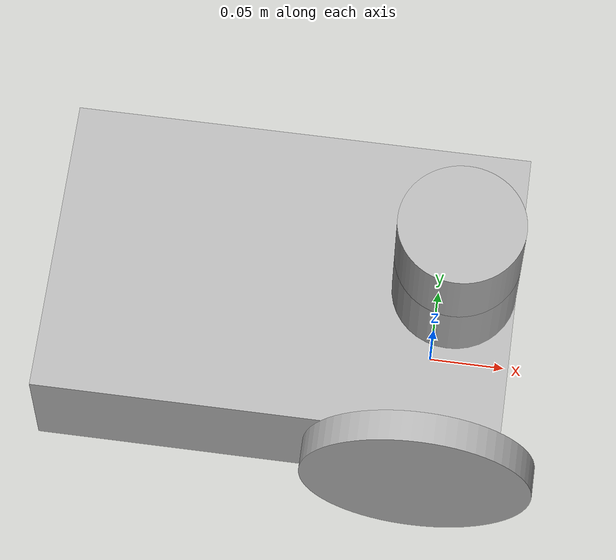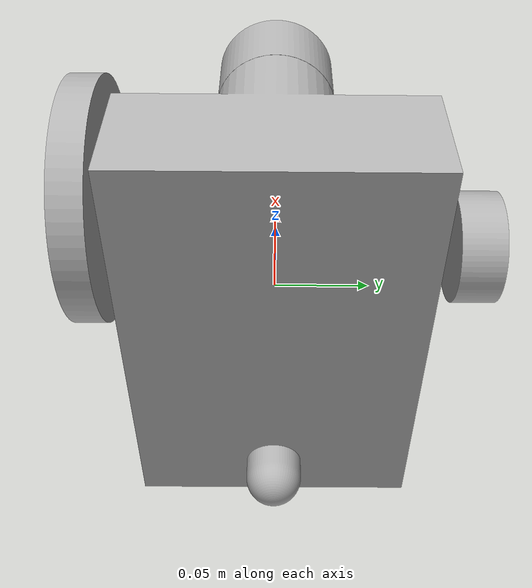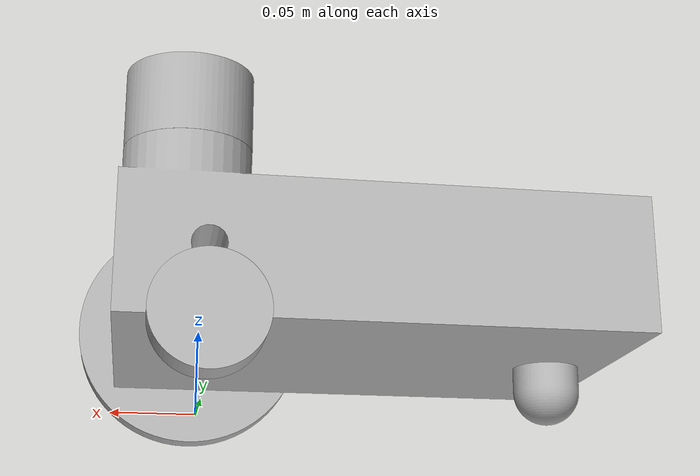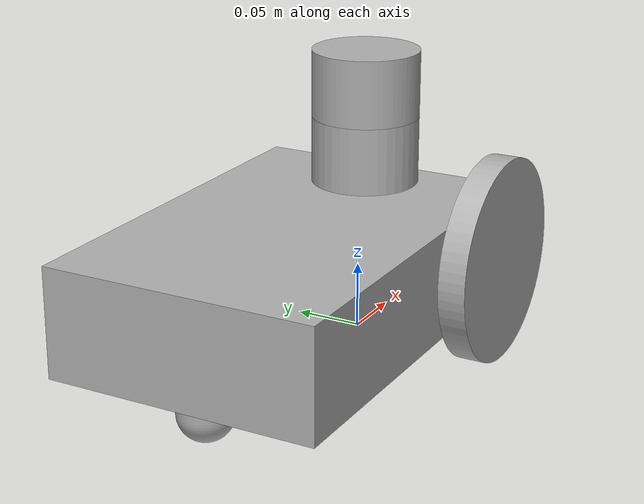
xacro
<?xml version="1.0" ?>
<robot name="simple_robot" xmlns:xacro="http://www.ros.org/wiki/xacro">

<xacro:include filename="$(find simple_robot_description)/urdf/materials.xacro" />
<xacro:include filename="$(find simple_robot_description)/urdf/simple_robot.trans" />
<xacro:include filename="$(find simple_robot_description)/urdf/simple_robot.gazebo" />
<link name="base_link">
  <inertial>
    <origin rpy="0 0 0" xyz="-0.09571758062309055 1.4585474774538683e-17 0.07827479128822486"/>
    <mass value="5.28780529276831"/>
    <inertia ixx="0.020681" ixy="-0.0" ixz="-0.001831" iyy="0.044562" iyz="0.0" izz="0.05757"/>
  </inertial>
  <visual>
    <origin rpy="0 0 0" xyz="0 0 0"/>
    <geometry>
      <mesh filename="package://simple_robot_description/meshes/base_link.stl" scale="0.001 0.001 0.001"/>
    </geometry>
    <material name="silver"/>
  </visual>
  <collision>
    <origin rpy="0 0 0" xyz="0 0 0"/>
    <geometry>
      <mesh filename="package://simple_robot_description/meshes/base_link.stl" scale="0.001 0.001 0.001"/>
    </geometry>
  </collision>
</link>

<link name="wheeel_left_1">
  <inertial>
    <origin rpy="0 0 0" xyz="1.2866718000271176e-17 0.010000000000000009 0.0"/>
    <mass value="0.3286891313818321"/>
    <inertia ixx="0.000473" ixy="-0.0" ixz="-0.0" iyy="0.000924" iyz="0.0" izz="0.000473"/>
  </inertial>
  <visual>
    <origin rpy="0 0 0" xyz="-0.0 -0.1 -0.075"/>
    <geometry>
      <mesh filename="package://simple_robot_description/meshes/wheeel_left_1.stl" scale="0.001 0.001 0.001"/>
    </geometry>
    <material name="silver"/>
  </visual>
  <collision>
    <origin rpy="0 0 0" xyz="-0.0 -0.1 -0.075"/>
    <geometry>
      <mesh filename="package://simple_robot_description/meshes/wheeel_left_1.stl" scale="0.001 0.001 0.001"/>
    </geometry>
  </collision>
</link>

<link name="wheel_right_1">
  <inertial>
    <origin rpy="0 0 0" xyz="1.2866718000271176e-17 -0.010000000000000009 0.0"/>
    <mass value="0.3286891313818321"/>
    <inertia ixx="0.000473" ixy="0.0" ixz="0.0" iyy="0.000924" iyz="0.0" izz="0.000473"/>
  </inertial>
  <visual>
    <origin rpy="0 0 0" xyz="-0.0 0.1 -0.075"/>
    <geometry>
      <mesh filename="package://simple_robot_description/meshes/wheel_right_1.stl" scale="0.001 0.001 0.001"/>
    </geometry>
    <material name="silver"/>
  </visual>
  <collision>
    <origin rpy="0 0 0" xyz="-0.0 0.1 -0.075"/>
    <geometry>
      <mesh filename="package://simple_robot_description/meshes/wheel_right_1.stl" scale="0.001 0.001 0.001"/>
    </geometry>
  </collision>
</link>

<link name="laser">
  <inertial>
    <origin rpy="0 0 0" xyz="0.0 9.046911093940672e-18 0.024999999999999994"/>
    <mass value="0.26640705702441436"/>
    <inertia ixx="0.000162" ixy="0.0" ixz="0.0" iyy="0.000162" iyz="0.0" izz="0.000213"/>
  </inertial>
  <visual>
    <origin rpy="0 0 0" xyz="-0.01 -0.0 -0.165"/>
    <geometry>
      <mesh filename="package://simple_robot_description/meshes/lidar_1.stl" scale="0.001 0.001 0.001"/>
    </geometry>
    <material name="silver"/>
  </visual>
  <collision>
    <origin rpy="0 0 0" xyz="-0.01 -0.0 -0.165"/>
    <geometry>
      <mesh filename="package://simple_robot_description/meshes/lidar_1.stl" scale="0.001 0.001 0.001"/>
    </geometry>
  </collision>
</link>

<link name="caster_wheel_1">
  <inertial>
    <origin rpy="0 0 0" xyz="0.0 -3.991284306150292e-18 -0.014558823529411784"/>
    <mass value="0.0377409997451254"/>
    <inertia ixx="6e-06" ixy="-0.0" ixz="0.0" iyy="6e-06" iyz="-0.0" izz="7e-06"/>
  </inertial>
  <visual>
    <origin rpy="0 0 0" xyz="0.215 -0.0 -0.035"/>
    <geometry>
      <mesh filename="package://simple_robot_description/meshes/caster_wheel_1.stl" scale="0.001 0.001 0.001"/>
    </geometry>
    <material name="silver"/>
  </visual>
  <collision>
    <origin rpy="0 0 0" xyz="0.215 -0.0 -0.035"/>
    <geometry>
      <mesh filename="package://simple_robot_description/meshes/caster_wheel_1.stl" scale="0.001 0.001 0.001"/>
    </geometry>
  </collision>
</link>

<joint name="Rev1" type="continuous">
  <origin rpy="0 0 0" xyz="0.0 0.1 0.075"/>
  <parent link="base_link"/>
  <child link="wheeel_left_1"/>
  <axis xyz="0.0 1.0 0.0"/>
</joint>

<joint name="Rev2" type="continuous">
  <origin rpy="0 0 0" xyz="0.0 -0.1 0.075"/>
  <parent link="base_link"/>
  <child link="wheel_right_1"/>
  <axis xyz="0.0 1.0 0.0"/>
</joint>

<joint name="Rigid3" type="fixed">
  <origin rpy="0 0 0" xyz="0.01 0.0 0.165"/>
  <parent link="base_link"/>
  <child link="laser"/>
</joint>

<joint name="Rigid4" type="fixed">
  <origin rpy="0 0 0" xyz="-0.215 0.0 0.035"/>
  <parent link="base_link"/>
  <child link="caster_wheel_1"/>
</joint>

</robot>

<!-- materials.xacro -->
<robot name="simple_robot" xmlns:xacro="http://www.ros.org/wiki/xacro" >

<material name="silver">
  <color rgba="0.700 0.700 0.700 1.000"/>
</material>

</robot>

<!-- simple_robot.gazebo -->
<robot name="simple_robot" xmlns:xacro="http://www.ros.org/wiki/xacro" >

<xacro:property name="update_rate" value="10" />

<xacro:property name="black_color" value="Gazebo/Black" />
<xacro:property name="white_color" value="Gazebo/White" />
<xacro:property name="blue_color" value="Gazebo/Blue" />

<xacro:property name="standard_friction" value="0.2" />
<xacro:property name="wheel_friction" value="100.0" />
<xacro:property name="caster_friction" value="0.1" />

<gazebo reference="base_link">
  <material>${white_color}</material>
  <mu1>${standard_friction}</mu1>
  <mu2>${standard_friction}</mu2>
  <selfCollide>true</selfCollide>
  <gravity>true</gravity>
</gazebo>

<gazebo reference="wheeel_left_1">
  <material>${black_color}</material>
  <mu1>${wheel_friction}</mu1>
  <mu2>${wheel_friction}</mu2>
  <selfCollide>true</selfCollide>
</gazebo>

<gazebo reference="wheel_right_1">
  <material>${black_color}</material>
  <mu1>${wheel_friction}</mu1>
  <mu2>${wheel_friction}</mu2>
  <selfCollide>true</selfCollide>
</gazebo>

<gazebo reference="laser">
  <material>${blue_color}</material>
  <mu1>${standard_friction}</mu1>
  <mu2>${standard_friction}</mu2>
  <selfCollide>true</selfCollide>
</gazebo>

<gazebo reference="caster_wheel_1">
  <material>${black_color}</material>
  <mu1>${caster_friction}</mu1>
  <mu2>${caster_friction}</mu2>
  <selfCollide>true</selfCollide>
</gazebo>

<!-- Plugines ************************************************************** -->

<gazebo>
  <plugin filename="libgazebo_ros_control.so" name="control"/>
</gazebo>

<!-- Differential Drive -->
<gazebo>
  <plugin name="differential_drive_controller" filename="libgazebo_ros_diff_drive.so">

    <!-- Plugin update rate in Hz -->
    <updateRate>${update_rate}</updateRate>

    <!-- Name of left joint, defaults to `left_joint` -->
    <leftJoint>Rev1</leftJoint>

    <!-- Name of right joint, defaults to `right_joint` -->
    <rightJoint>Rev2</rightJoint>

    <!-- The distance from the center of one wheel to the other, in meters, defaults to 0.34 m -->
    <wheelSeparation>0.22</wheelSeparation>

    <!-- Diameter of the wheels, in meters, defaults to 0.15 m -->
    <wheelDiameter>0.15</wheelDiameter>

    <!-- Wheel acceleration, in rad/s^2, defaults to 0.0 rad/s^2 -->
    <wheelAcceleration>1.0</wheelAcceleration>

    <!-- Maximum torque which the wheels can produce, in Nm, defaults to 5 Nm -->
    <wheelTorque>20</wheelTorque>

    <!-- Topic to receive geometry_msgs/Twist message commands, defaults to `cmd_vel` -->
    <commandTopic>cmd_vel</commandTopic>

    <!-- Topic to publish nav_msgs/Odometry messages, defaults to `odom` -->
    <odometryTopic>odom</odometryTopic>

    <!-- Odometry frame, defaults to `odom` -->
    <odometryFrame>odom</odometryFrame>

    <!-- Robot frame to calculate odometry from, defaults to `base_footprint` -->
    <robotBaseFrame>base_link</robotBaseFrame>

    <!-- Odometry source, 0 for ENCODER, 1 for WORLD, defaults to WORLD -->
    <odometrySource>1</odometrySource>

    <!-- Set to true to publish transforms for the wheel links, defaults to false -->
    <publishWheelTF>true</publishWheelTF>

    <!-- Set to true to publish transforms for the odometry, defaults to true -->
    <publishOdom>true</publishOdom>

    <!-- Set to true to publish sensor_msgs/JointState on /joint_states for the wheel joints, defaults to false -->
    <publishWheelJointState>true</publishWheelJointState>

    <!-- Set to true to swap right and left wheels, defaults to true -->
    <legacyMode>false</legacyMode>
  </plugin>
</gazebo>

<!-- Lidar -->
<gazebo reference="laser">
  <sensor type="gpu_ray" name="rplidar_a1">
    <pose>0 0 0 0 0 0</pose>
    <visualize>false</visualize>
    <update_rate>${update_rate}</update_rate>
    <ray>
      <scan>
        <horizontal>
          <samples>720</samples>
          <resolution>1</resolution>
          <min_angle>-3.14159265359</min_angle>
          <max_angle>3.14159265359</max_angle>
        </horizontal>
      </scan>
      <range>
        <min>0.10</min>
        <max>8.0</max>
        <resolution>0.01</resolution>
      </range>
      <noise>
        <type>gaussian</type>
        <mean>0.0</mean>
        <stddev>0.05</stddev>
      </noise>
    </ray>
    <plugin name="gazebo_ros_head_hokuyo_controller" filename="libgazebo_ros_gpu_laser.so">
      <topicName>/scan</topicName>
      <frameName>laser</frameName>
    </plugin>
  </sensor>
</gazebo>

<!-- Debth camera -->

</robot>
